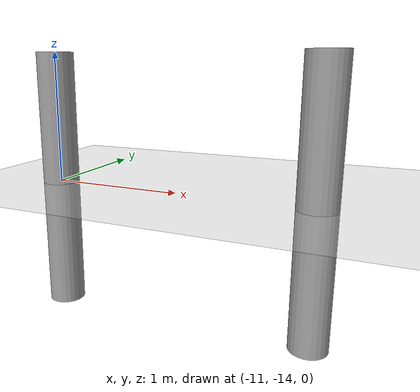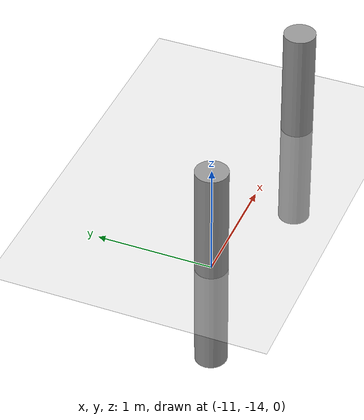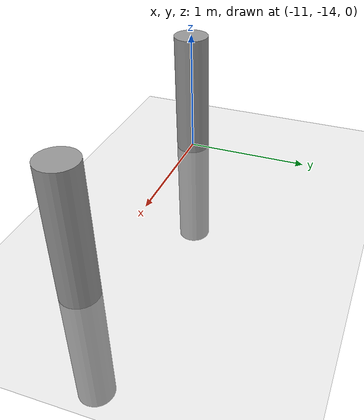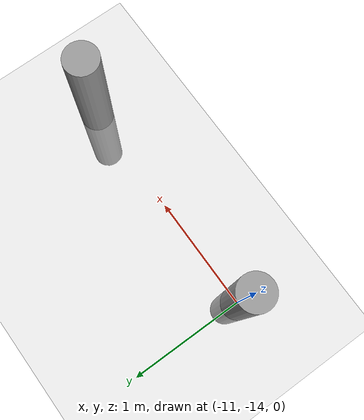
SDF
<sdf version="1.6">
 <world name="default">
  <model name="ground_plane">
   <static>1</static>
   <link name="link">
    <collision name="collision">
     <geometry><plane><normal>0 0 1</normal><size>100 100</size></plane></geometry>
     <surface><friction><ode><mu>100</mu><mu2>50</mu2></ode></friction></surface>
    </collision>
    <visual name="visual">
     <cast_shadows>0</cast_shadows>
     <geometry><plane><normal>0 0 1</normal><size>100 100</size></plane></geometry>
     <material>
      <script><uri>file://media/materials/scripts/gazebo.material</uri><name>Gazebo/Grey</name></script>
     </material>
    </visual>
   </link>
  </model>
  <model name="my_cylinder014_clone_3">
   <pose>-9 -14 0 0 -0 0</pose>
   <link name="my_cylinder014::link">
    <inertial>
     <mass>1</mass>
     <inertia><ixx>0.145833</ixx><ixy>0</ixy><ixz>0</ixz><iyy>0.145833</iyy><iyz>0</iyz><izz>0.125</izz></inertia>
    </inertial>
    <visual name="visual">
     <geometry><cylinder><radius>0.14</radius><length>2</length></cylinder></geometry>
     <material>
      <script><name>Gazebo/Grey</name><uri>file://media/materials/scripts/gazebo.material</uri></script>
      <ambient>0.3 0.3 0.3 1</ambient>
      <diffuse>0.7 0.7 0.7 1</diffuse>
      <specular>1 0.01 0.01 1</specular>
      <emissive>0 0 0 1</emissive>
      <shader type="vertex"><normal_map>__default__</normal_map></shader>
     </material>
    </visual>
    <collision name="collision">
     <geometry><cylinder><radius>0.14</radius><length>2</length></cylinder></geometry>
     <surface>
      <friction>
       <ode><mu>1</mu><mu2>1</mu2><fdir1>0 0 0</fdir1><slip1>0</slip1><slip2>0</slip2></ode>
       <torsional>
        <coefficient>1</coefficient>
        <patch_radius>0</patch_radius>
        <surface_radius>0</surface_radius>
        <use_patch_radius>1</use_patch_radius>
        <ode><slip>0</slip></ode>
       </torsional>
      </friction>
      <bounce><restitution_coefficient>0</restitution_coefficient><threshold>1e+06</threshold></bounce>
      <contact>
       <collide_without_contact>0</collide_without_contact>
       <collide_without_contact_bitmask>1</collide_without_contact_bitmask>
       <collide_bitmask>1</collide_bitmask>
       <ode>
        <soft_cfm>0</soft_cfm>
        <soft_erp>0.2</soft_erp>
        <kp>1e+13</kp>
        <kd>1</kd>
        <max_vel>0.01</max_vel>
        <min_depth>0</min_depth>
       </ode>
       <bullet>
        <split_impulse>1</split_impulse>
        <split_impulse_penetration_threshold>-0.01</split_impulse_penetration_threshold>
        <soft_cfm>0</soft_cfm>
        <soft_erp>0.2</soft_erp>
        <kp>1e+13</kp>
        <kd>1</kd>
       </bullet>
      </contact>
     </surface>
    </collision>
   </link>
   <static>1</static>
  </model>
  <model name="my_cylinder014_clone_2">
   <pose>-11 -14 0 0 -0 0</pose>
   <link name="my_cylinder014::link">
    <inertial>
     <mass>1</mass>
     <inertia><ixx>0.145833</ixx><ixy>0</ixy><ixz>0</ixz><iyy>0.145833</iyy><iyz>0</iyz><izz>0.125</izz></inertia>
    </inertial>
    <visual name="visual">
     <geometry><cylinder><radius>0.14</radius><length>2</length></cylinder></geometry>
     <material>
      <script><name>Gazebo/Grey</name><uri>file://media/materials/scripts/gazebo.material</uri></script>
      <ambient>0.3 0.3 0.3 1</ambient>
      <diffuse>0.7 0.7 0.7 1</diffuse>
      <specular>1 0.01 0.01 1</specular>
      <emissive>0 0 0 1</emissive>
      <shader type="vertex"><normal_map>__default__</normal_map></shader>
     </material>
    </visual>
    <collision name="collision">
     <geometry><cylinder><radius>0.14</radius><length>2</length></cylinder></geometry>
     <surface>
      <friction>
       <ode><mu>1</mu><mu2>1</mu2><fdir1>0 0 0</fdir1><slip1>0</slip1><slip2>0</slip2></ode>
       <torsional>
        <coefficient>1</coefficient>
        <patch_radius>0</patch_radius>
        <surface_radius>0</surface_radius>
        <use_patch_radius>1</use_patch_radius>
        <ode><slip>0</slip></ode>
       </torsional>
      </friction>
      <bounce><restitution_coefficient>0</restitution_coefficient><threshold>1e+06</threshold></bounce>
      <contact>
       <collide_without_contact>0</collide_without_contact>
       <collide_without_contact_bitmask>1</collide_without_contact_bitmask>
       <collide_bitmask>1</collide_bitmask>
       <ode>
        <soft_cfm>0</soft_cfm>
        <soft_erp>0.2</soft_erp>
        <kp>1e+13</kp>
        <kd>1</kd>
        <max_vel>0.01</max_vel>
        <min_depth>0</min_depth>
       </ode>
       <bullet>
        <split_impulse>1</split_impulse>
        <split_impulse_penetration_threshold>-0.01</split_impulse_penetration_threshold>
        <soft_cfm>0</soft_cfm>
        <soft_erp>0.2</soft_erp>
        <kp>1e+13</kp>
        <kd>1</kd>
       </bullet>
      </contact>
     </surface>
    </collision>
   </link>
   <static>1</static>
  </model>
  <model name="my_cylinder014_clone_2">
   <pose>-11 -14 0 0 -0 0</pose>
   <link name="my_cylinder014::link">
    <inertial>
     <mass>1</mass>
     <inertia><ixx>0.145833</ixx><ixy>0</ixy><ixz>0</ixz><iyy>0.145833</iyy><iyz>0</iyz><izz>0.125</izz></inertia>
    </inertial>
    <visual name="visual">
     <geometry><cylinder><radius>0.14</radius><length>2</length></cylinder></geometry>
     <material>
      <script><name>Gazebo/Grey</name><uri>file://media/materials/scripts/gazebo.material</uri></script>
      <ambient>0.3 0.3 0.3 1</ambient>
      <diffuse>0.7 0.7 0.7 1</diffuse>
      <specular>1 0.01 0.01 1</specular>
      <emissive>0 0 0 1</emissive>
      <shader type="vertex"><normal_map>__default__</normal_map></shader>
     </material>
    </visual>
    <collision name="collision">
     <geometry><cylinder><radius>0.14</radius><length>2</length></cylinder></geometry>
     <surface>
      <friction>
       <ode><mu>1</mu><mu2>1</mu2><fdir1>0 0 0</fdir1><slip1>0</slip1><slip2>0</slip2></ode>
       <torsional>
        <coefficient>1</coefficient>
        <patch_radius>0</patch_radius>
        <surface_radius>0</surface_radius>
        <use_patch_radius>1</use_patch_radius>
        <ode><slip>0</slip></ode>
       </torsional>
      </friction>
      <bounce><restitution_coefficient>0</restitution_coefficient><threshold>1e+06</threshold></bounce>
      <contact>
       <collide_without_contact>0</collide_without_contact>
       <collide_without_contact_bitmask>1</collide_without_contact_bitmask>
       <collide_bitmask>1</collide_bitmask>
       <ode>
        <soft_cfm>0</soft_cfm>
        <soft_erp>0.2</soft_erp>
        <kp>1e+13</kp>
        <kd>1</kd>
        <max_vel>0.01</max_vel>
        <min_depth>0</min_depth>
       </ode>
       <bullet>
        <split_impulse>1</split_impulse>
        <split_impulse_penetration_threshold>-0.01</split_impulse_penetration_threshold>
        <soft_cfm>0</soft_cfm>
        <soft_erp>0.2</soft_erp>
        <kp>1e+13</kp>
        <kd>1</kd>
       </bullet>
      </contact>
     </surface>
    </collision>
   </link>
   <static>1</static>
  </model>
 </world>
</sdf>
